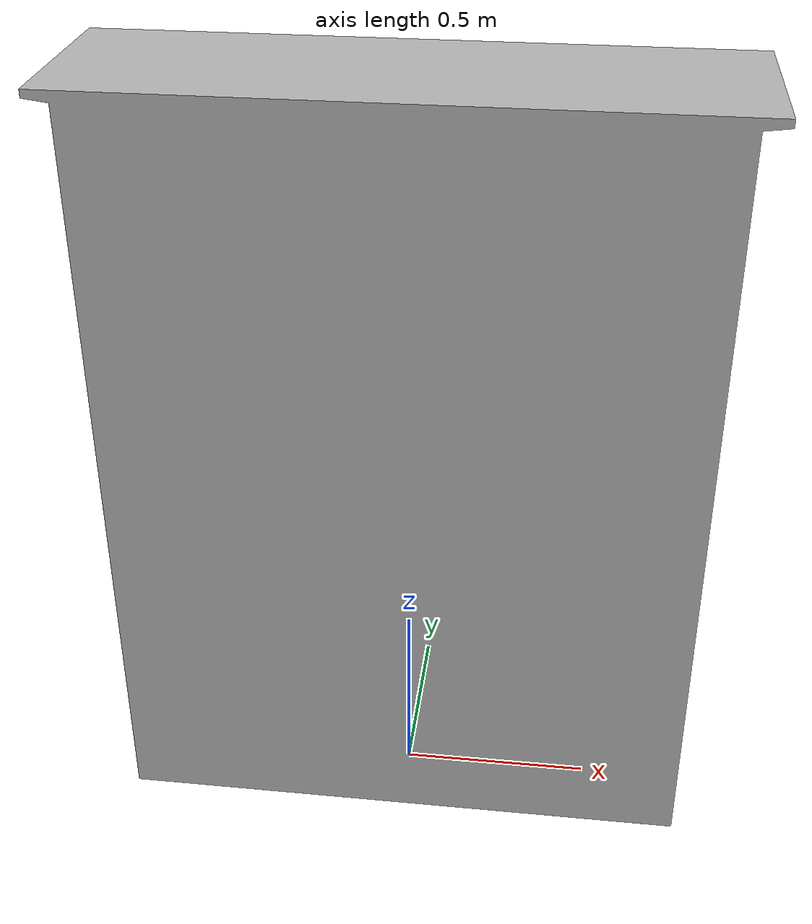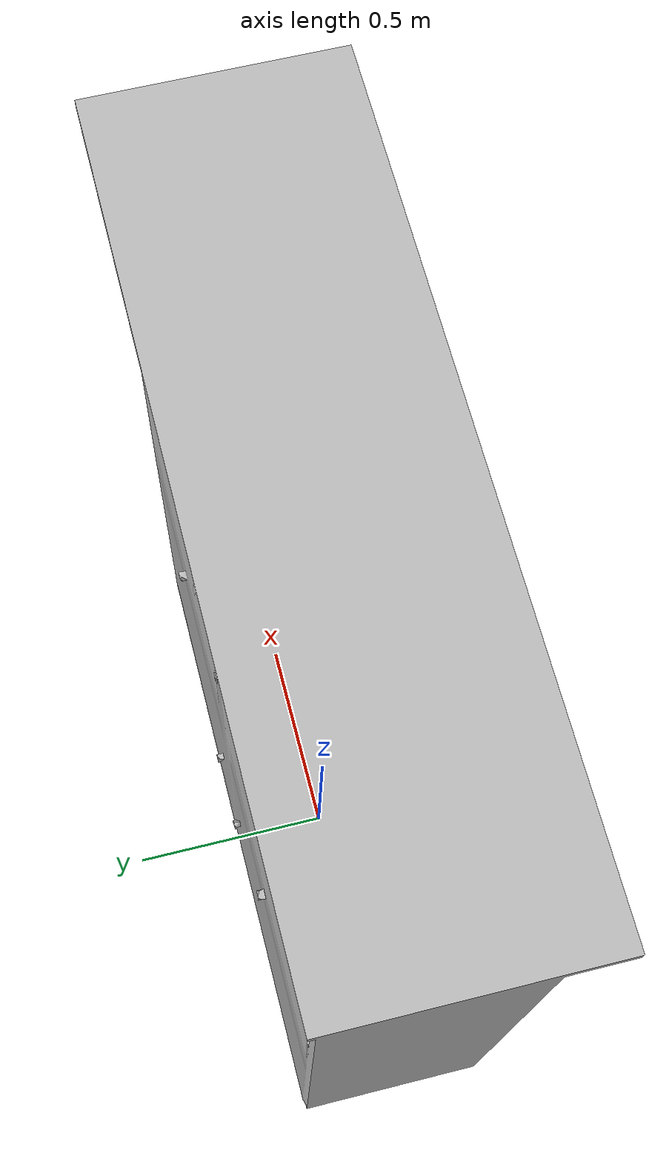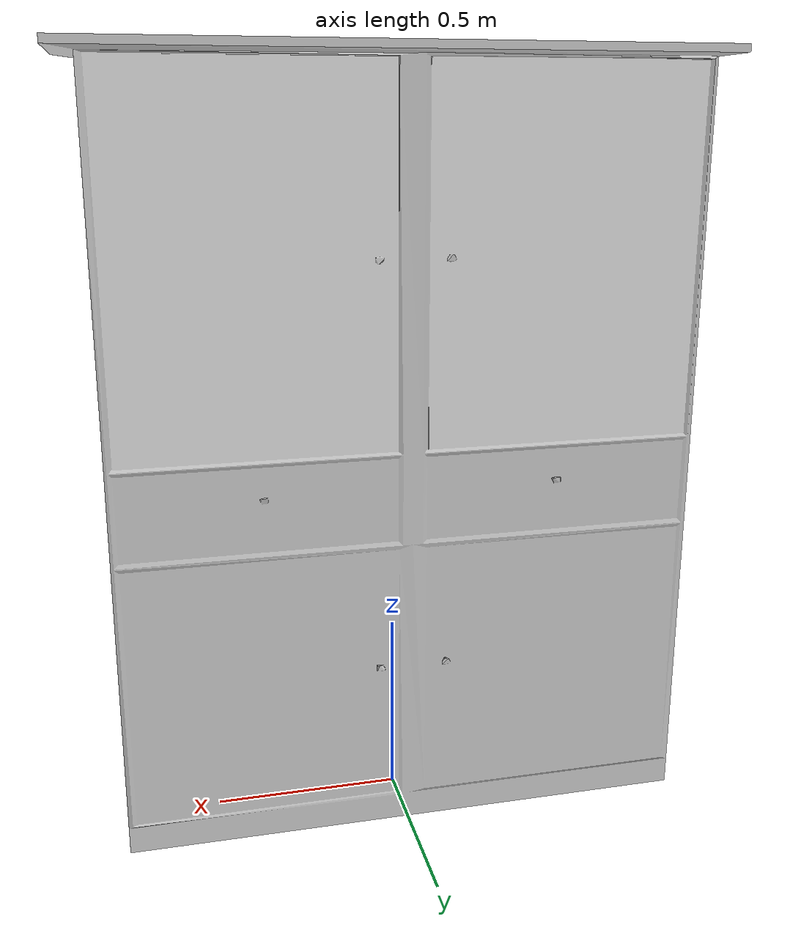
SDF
<?xml version='1.0'?>
<sdf version="1.5">

  <model name="closet">
    <static>false</static>
    <link name="link">

      <inertial>
        <mass>10.0</mass>
        <inertia>
          <ixx>0.2</ixx>       <!-- for a box: ixx = 0.083 * mass * (y*y + z*z) -->
          <ixy>0.0</ixy>       <!-- for a box: ixy = 0 -->
          <ixz>0.0</ixz>       <!-- for a box: ixz = 0 -->
          <iyy>0.2</iyy>       <!-- for a box: iyy = 0.083 * mass * (x*x + z*z) -->
          <iyz>0.0</iyz>       <!-- for a box: iyz = 0 -->
          <izz>0.2</izz>      <!-- for a box: izz = 0.083 * mass * (x*x + y*y) -->
        </inertia>
      </inertial>

      <collision name="collision">
        <geometry>
          <mesh>
            <uri>model://closet/closet.dae</uri>
          </mesh>
        </geometry>
      </collision>

      <visual name="visual">
        <geometry>
          <mesh>
            <uri>model://closet/closet.dae</uri>
          </mesh>
        </geometry>
      </visual>

    </link>
  </model>

</sdf>
